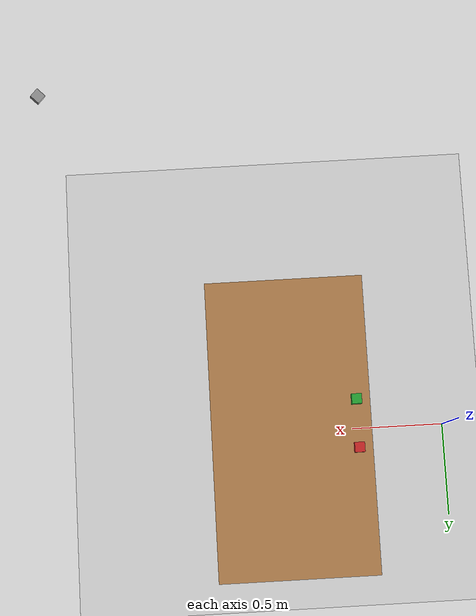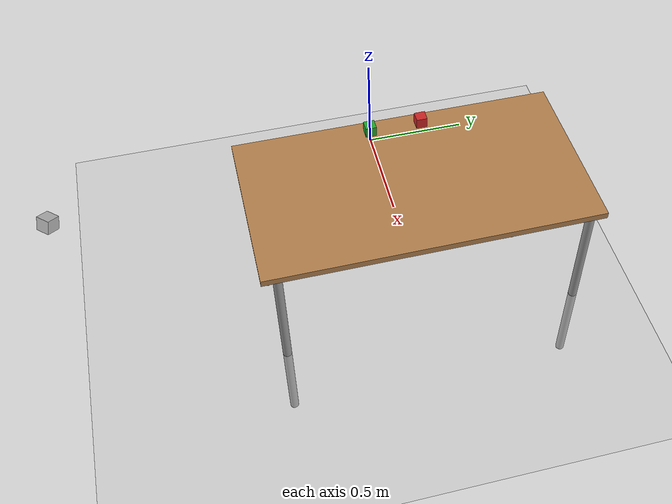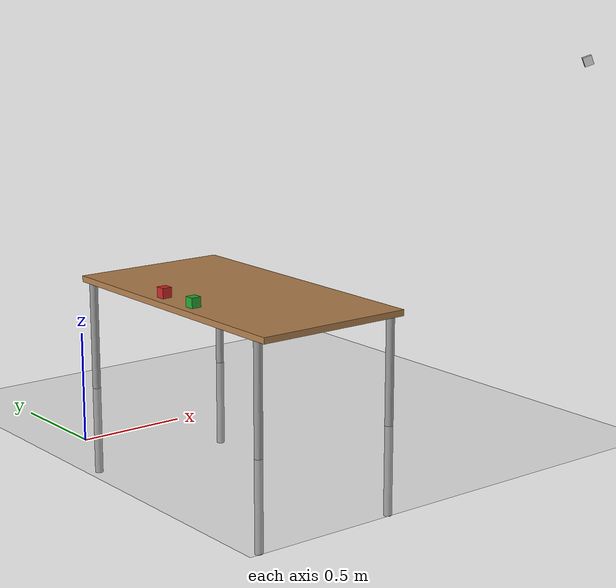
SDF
<sdf version="1.6">
 <world name="grab_hsv_color">
  <include><uri>model://ground_plane</uri></include>
  <include><uri>model://sun</uri></include>
  <include><name>table</name><uri>model://table</uri><pose>0.85 0 -0.45 0 0 1.5708</pose></include>
  <include><name>red_block</name><uri>model://box_target_red</uri><pose>0.52 0.12 0.565 0 0 0</pose></include>
  <include>
   <name>green_block</name>
   <uri>model://box_target_green</uri>
   <pose>0.52 -0.12 0.565 0 0 0</pose>
  </include>
  <model name="scene_camera">
   <static>true</static>
   <pose>1.8 -1.3 1.7 0 0.35 2.4</pose>
   <link name="link">
    <visual name="vis"><geometry><box><size>0.04 0.04 0.04</size></box></geometry></visual>
    <sensor type="camera" name="scene_cam">
     <always_on>true</always_on>
     <update_rate>15</update_rate>
     <camera name="scene">
      <horizontal_fov>1.2</horizontal_fov>
      <image><width>960</width><height>540</height><format>R8G8B8</format></image>
      <clip><near>0.05</near><far>50</far></clip>
     </camera>
     <plugin name="scene_cam_controller" filename="libgazebo_ros_camera.so">
      <ros>
       <namespace>/sim_scene/arm</namespace>
       <remapping>scene/image_raw:=image_raw</remapping>
       <remapping>scene/camera_info:=camera_info</remapping>
      </ros>
      <camera_name>scene</camera_name>
      <frame_name>scene_camera</frame_name>
     </plugin>
    </sensor>
   </link>
  </model>
  <physics name="default_physics" default="0" type="ode">
   <max_step_size>0.001</max_step_size>
   <real_time_factor>1.0</real_time_factor>
   <real_time_update_rate>1000</real_time_update_rate>
  </physics>
 </world>
</sdf>

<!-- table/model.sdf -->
<sdf version="1.5">
  <model name="table">
    <static>true</static>
    <link name="link">
      <collision name="surface">
        <pose>0 0 1.0 0 0 0</pose>
        <geometry>
          <box>
            <size>1.5 0.8 0.03</size>
          </box>
        </geometry>
        <surface>
          <friction>
            <ode>
              <mu>0.6</mu>
              <mu2>0.6</mu2>
            </ode>
          </friction>
        </surface>
      </collision>
      <visual name="visual1">
        <pose>0 0 1.0 0 0 0</pose>
        <geometry>
          <box>
            <size>1.5 0.8 0.03</size>
          </box>
        </geometry>
        <material>
          <script>
            <uri>model://media/materials/scripts/gazebo.material</uri>
            <name>Gazebo/Wood</name>
          </script>
        </material>
      </visual>
      <collision name="front_left_leg">
        <pose>0.68 0.38 0.5 0 0 0</pose>
        <geometry>
          <cylinder>
            <radius>0.02</radius>
            <length>1.0</length>
          </cylinder>
        </geometry>
      </collision>
      <visual name="front_left_leg">
        <pose>0.68 0.38 0.5 0 0 0</pose>
        <geometry>
          <cylinder>
            <radius>0.02</radius>
            <length>1.0</length>
          </cylinder>
        </geometry>
        <material>
          <script>
            <uri>model://media/materials/scripts/gazebo.material</uri>
            <name>Gazebo/Grey</name>
          </script>
        </material>
      </visual>
      <collision name="front_right_leg">
        <pose>0.68 -0.38 0.5 0 0 0</pose>
        <geometry>
          <cylinder>
            <radius>0.02</radius>
            <length>1.0</length>
          </cylinder>
        </geometry>
      </collision>
      <visual name="front_right_leg">
        <pose>0.68 -0.38 0.5 0 0 0</pose>
        <geometry>
          <cylinder>
            <radius>0.02</radius>
            <length>1.0</length>
          </cylinder>
        </geometry>
        <material>
          <script>
            <uri>model://media/materials/scripts/gazebo.material</uri>
            <name>Gazebo/Grey</name>
          </script>
        </material>
      </visual>
      <collision name="back_right_leg">
        <pose>-0.68 -0.38 0.5 0 0 0</pose>
        <geometry>
          <cylinder>
            <radius>0.02</radius>
            <length>1.0</length>
          </cylinder>
        </geometry>
      </collision>
      <visual name="back_right_leg">
        <pose>-0.68 -0.38 0.5 0 0 0</pose>
        <geometry>
          <cylinder>
            <radius>0.02</radius>
            <length>1.0</length>
          </cylinder>
        </geometry>
        <material>
          <script>
            <uri>model://media/materials/scripts/gazebo.material</uri>
            <name>Gazebo/Grey</name>
          </script>
        </material>
      </visual>
      <collision name="back_left_leg">
        <pose>-0.68 0.38 0.5 0 0 0</pose>
        <geometry>
          <cylinder>
            <radius>0.02</radius>
            <length>1.0</length>
          </cylinder>
        </geometry>
      </collision>
      <visual name="back_left_leg">
        <pose>-0.68 0.38 0.5 0 0 0</pose>
        <geometry>
          <cylinder>
            <radius>0.02</radius>
            <length>1.0</length>
          </cylinder>
        </geometry>
        <material>
          <script>
            <uri>model://media/materials/scripts/gazebo.material</uri>
            <name>Gazebo/Grey</name>
          </script>
        </material>
      </visual>
    </link>
  </model>
</sdf>

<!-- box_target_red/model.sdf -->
<!-- box_target_red — 红色小方块(HSV 颜色抓取目标)。
     原模型是 6×6×2m 的"降落台"网格, 远超机械臂尺度, 已改为 5cm 可抓取纯红立方体。
     link 原点在方块底面, world 里按桌面高度摆放即贴桌, dynamic 可被夹起。 -->
<sdf version="1.6">
  <model name="box_target_red">
    <link name="link">
      <pose>0 0 0.025 0 0 0</pose>
      <inertial>
        <mass>0.05</mass>
        <inertia>
          <ixx>2.0833333e-05</ixx>
          <ixy>0</ixy>
          <ixz>0</ixz>
          <iyy>2.0833333e-05</iyy>
          <iyz>0</iyz>
          <izz>2.0833333e-05</izz>
        </inertia>
      </inertial>

      <collision name="collision">
        <geometry>
          <box>
            <size>0.05 0.05 0.05</size>
          </box>
        </geometry>
        <surface>
          <friction>
            <ode>
              <mu>1.0</mu>
              <mu2>1.0</mu2>
            </ode>
          </friction>
          <contact>
            <ode>
              <kp>100000</kp>
              <kd>1</kd>
              <min_depth>0.001</min_depth>
              <max_vel>0.1</max_vel>
            </ode>
          </contact>
        </surface>
      </collision>

      <visual name="visual">
        <geometry>
          <box>
            <size>0.05 0.05 0.05</size>
          </box>
        </geometry>
        <material>
          <ambient>0.8 0.0 0.0 1</ambient>
          <diffuse>0.9 0.05 0.05 1</diffuse>
          <specular>0.1 0.1 0.1 1</specular>
          <script>
            <uri>file://media/materials/scripts/gazebo.material</uri>
            <name>Gazebo/Red</name>
          </script>
        </material>
      </visual>
    </link>
  </model>
</sdf>

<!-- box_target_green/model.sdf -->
<!-- box_target_green — 绿色小方块(HSV 颜色抓取目标)。
     原模型是 6×6×2m 的"降落台"网格, 远超机械臂尺度, 已改为 5cm 可抓取纯绿立方体。
     link 原点在方块底面, world 里按桌面高度摆放即贴桌, dynamic 可被夹起。 -->
<sdf version="1.6">
  <model name="box_target_green">
    <link name="link">
      <pose>0 0 0.025 0 0 0</pose>
      <inertial>
        <mass>0.05</mass>
        <inertia>
          <ixx>2.0833333e-05</ixx>
          <ixy>0</ixy>
          <ixz>0</ixz>
          <iyy>2.0833333e-05</iyy>
          <iyz>0</iyz>
          <izz>2.0833333e-05</izz>
        </inertia>
      </inertial>

      <collision name="collision">
        <geometry>
          <box>
            <size>0.05 0.05 0.05</size>
          </box>
        </geometry>
        <surface>
          <friction>
            <ode>
              <mu>1.0</mu>
              <mu2>1.0</mu2>
            </ode>
          </friction>
          <contact>
            <ode>
              <kp>100000</kp>
              <kd>1</kd>
              <min_depth>0.001</min_depth>
              <max_vel>0.1</max_vel>
            </ode>
          </contact>
        </surface>
      </collision>

      <visual name="visual">
        <geometry>
          <box>
            <size>0.05 0.05 0.05</size>
          </box>
        </geometry>
        <material>
          <ambient>0.0 0.7 0.0 1</ambient>
          <diffuse>0.05 0.9 0.05 1</diffuse>
          <specular>0.1 0.1 0.1 1</specular>
          <script>
            <uri>file://media/materials/scripts/gazebo.material</uri>
            <name>Gazebo/Green</name>
          </script>
        </material>
      </visual>
    </link>
  </model>
</sdf>
